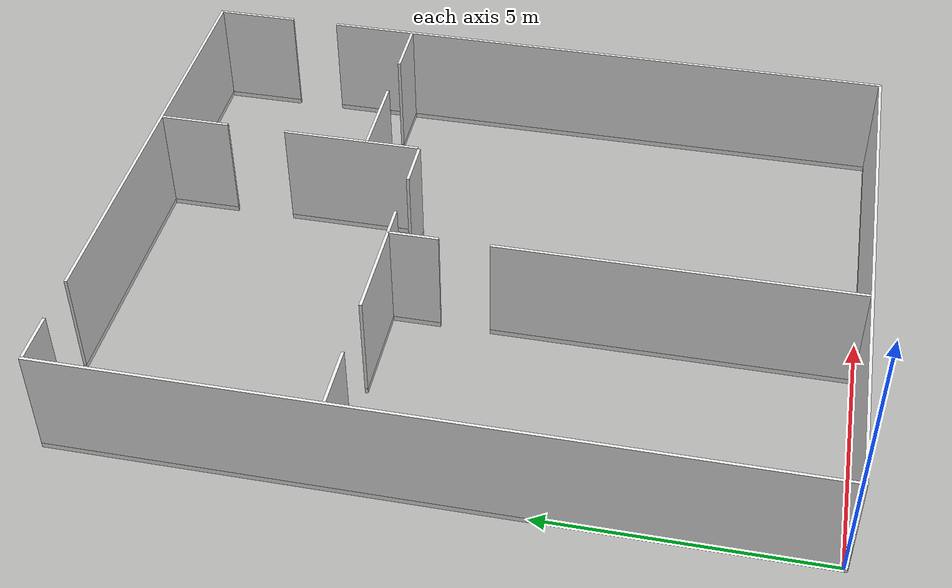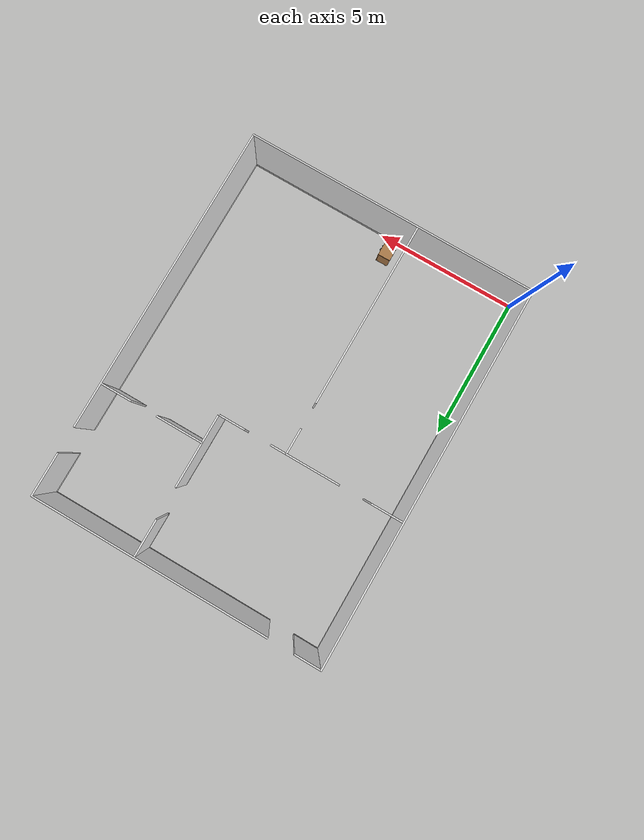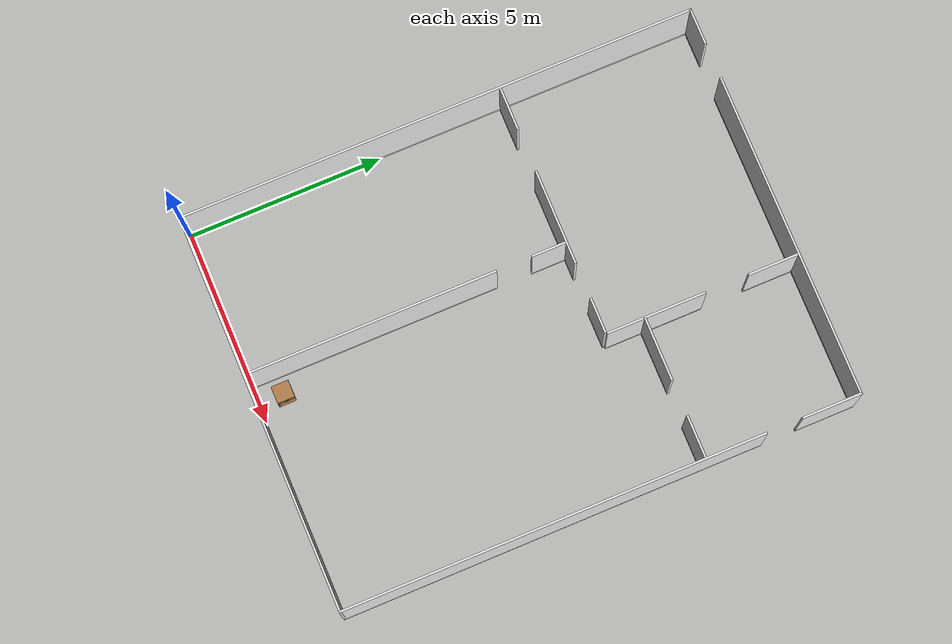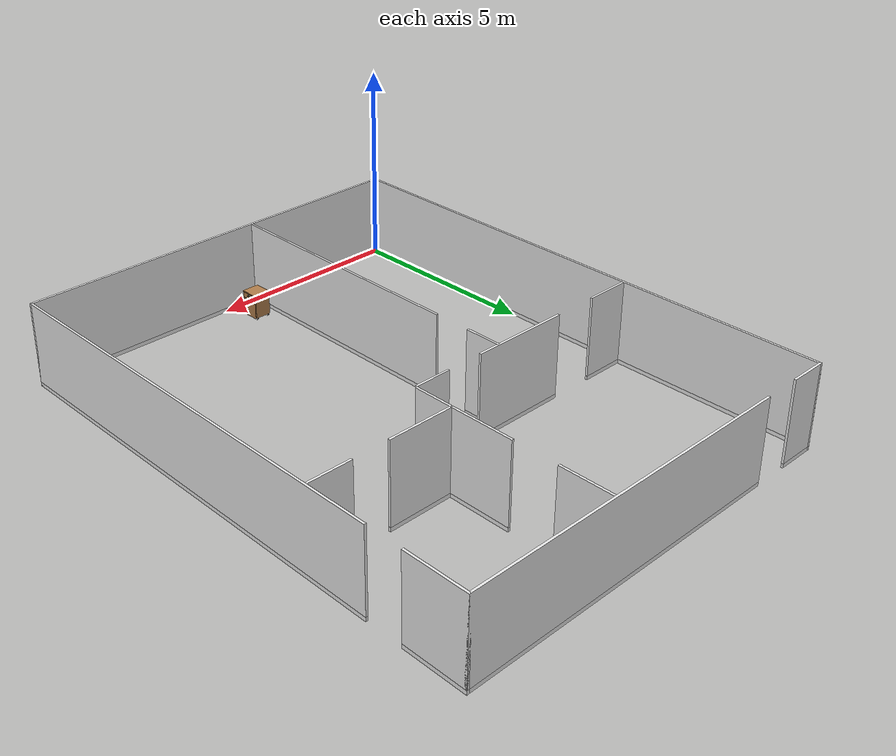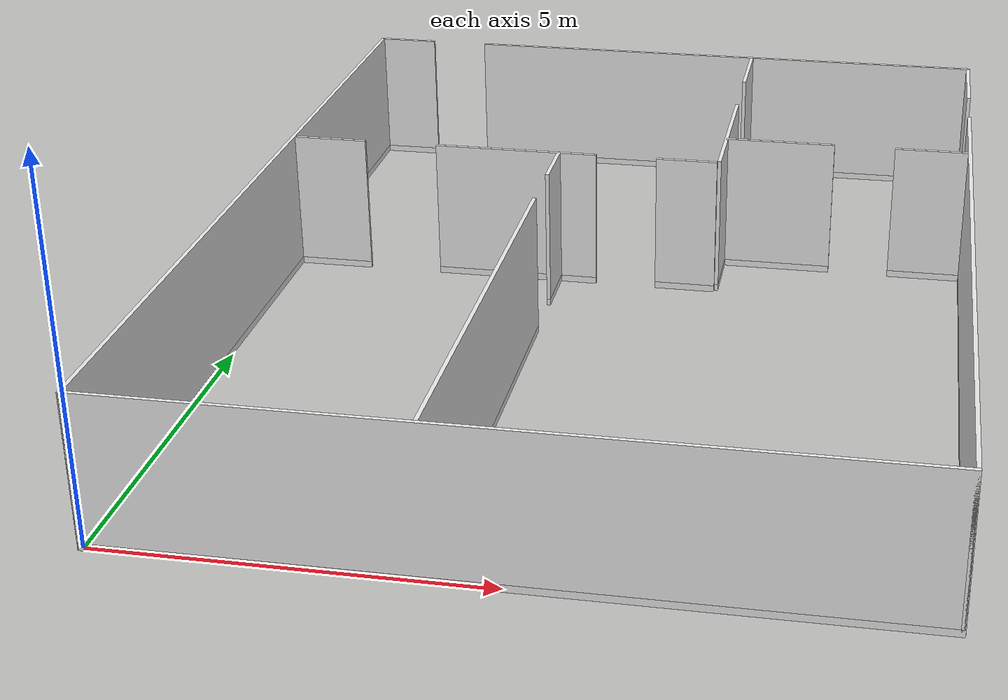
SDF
<sdf version="1.6">
 <world name="default">
  <model name="inside_wall">
   <link name="link">
    <inertial>
     <mass>50</mass>
     <inertia><ixx>1</ixx><ixy>0</ixy><ixz>0</ixz><iyy>1</iyy><iyz>0</iyz><izz>1</izz></inertia>
    </inertial>
    <visual name="x05y01_08_bottom_frame">
     <pose>4.075 3.215 0.05 0 -0 0</pose>
     <geometry><box><size>0.055 6.43 0.1</size></box></geometry>
     <material>
      <script><uri>model://base_materials/color/scripts</uri><name>hsr_color/white</name></script>
     </material>
    </visual>
    <collision name="x05y01_08_collision_bottom_frame">
     <pose>4.075 3.215 0.05 0 -0 0</pose>
     <geometry><box><size>0.055 6.43 0.1</size></box></geometry>
    </collision>
    <visual name="x05y01_08_wall">
     <pose>4.075 3.215 1.095 0 -0 0</pose>
     <geometry><box><size>0.055 6.43 1.99</size></box></geometry>
     <material>
      <script>
       <uri>model://base_materials/wall/scripts</uri>
       <uri>model://base_materials/wall/textures</uri>
       <name>wall/white_noise</name>
      </script>
     </material>
    </visual>
    <collision name="x05y01_08_collision_wall">
     <pose>4.075 3.215 1.095 0 -0 0</pose>
     <geometry><box><size>0.055 6.43 1.99</size></box></geometry>
    </collision>
    <visual name="x05y10_bottom_frame">
     <pose>4.075 7.78 0.05 0 -0 0</pose>
     <geometry><box><size>0.055 0.9 0.1</size></box></geometry>
     <material>
      <script><uri>model://base_materials/color/scripts</uri><name>hsr_color/white</name></script>
     </material>
    </visual>
    <collision name="x05y10_collision_bottom_frame">
     <pose>4.075 7.78 0.05 0 -0 0</pose>
     <geometry><box><size>0.055 0.9 0.1</size></box></geometry>
    </collision>
    <visual name="x05y10_wall">
     <pose>4.075 7.78 1.095 0 -0 0</pose>
     <geometry><box><size>0.055 0.9 1.99</size></box></geometry>
     <material>
      <script>
       <uri>model://base_materials/wall/scripts</uri>
       <uri>model://base_materials/wall/textures</uri>
       <name>wall/white_noise</name>
      </script>
     </material>
    </visual>
    <collision name="x05y10_collision_wall">
     <pose>4.075 7.78 1.095 0 -0 0</pose>
     <geometry><box><size>0.055 0.9 1.99</size></box></geometry>
    </collision>
    <visual name="x01_02_y09_bottom_frame">
     <pose>0.55 8.23 0.05 0 -0 1.5708</pose>
     <geometry><box><size>0.055 1.1 0.1</size></box></geometry>
     <material>
      <script><uri>model://base_materials/color/scripts</uri><name>hsr_color/white</name></script>
     </material>
    </visual>
    <collision name="x01_02_y09_collision_bottom_frame">
     <pose>0.55 8.23 0.05 0 -0 1.5708</pose>
     <geometry><box><size>0.055 1.1 0.1</size></box></geometry>
    </collision>
    <visual name="x01_02_y09_wall">
     <pose>0.55 8.23 1.095 0 -0 1.5708</pose>
     <geometry><box><size>0.055 1.1 1.99</size></box></geometry>
     <material>
      <script>
       <uri>model://base_materials/wall/scripts</uri>
       <uri>model://base_materials/wall/textures</uri>
       <name>wall/white_noise</name>
      </script>
     </material>
    </visual>
    <collision name="x01_02_y09_collision_wall">
     <pose>0.55 8.23 1.095 0 -0 1.5708</pose>
     <geometry><box><size>0.055 1.1 1.99</size></box></geometry>
    </collision>
    <visual name="x04_07_y09_bottom_frame">
     <pose>3.42 8.23 0.05 0 -0 1.5708</pose>
     <geometry><box><size>0.055 2.44 0.1</size></box></geometry>
     <material>
      <script><uri>model://base_materials/color/scripts</uri><name>hsr_color/white</name></script>
     </material>
    </visual>
    <collision name="x04_07_y09_collision_bottom_frame">
     <pose>3.42 8.23 0.05 0 -0 1.5708</pose>
     <geometry><box><size>0.055 2.44 0.1</size></box></geometry>
    </collision>
    <visual name="x04_07_y09_wall">
     <pose>3.42 8.23 1.095 0 -0 1.5708</pose>
     <geometry><box><size>0.055 2.44 1.99</size></box></geometry>
     <material>
      <script>
       <uri>model://base_materials/wall/scripts</uri>
       <uri>model://base_materials/wall/textures</uri>
       <name>wall/white_noise</name>
      </script>
     </material>
    </visual>
    <collision name="x04_07_y09_collision_wall">
     <pose>3.42 8.23 1.095 0 -0 1.5708</pose>
     <geometry><box><size>0.055 2.44 1.99</size></box></geometry>
    </collision>
    <visual name="x08y10a_bottom_frame">
     <pose>5.9925 8.23 0.05 0 -0 1.5708</pose>
     <geometry><box><size>0.055 0.9 0.1</size></box></geometry>
     <material>
      <script><uri>model://base_materials/color/scripts</uri><name>hsr_color/white</name></script>
     </material>
    </visual>
    <collision name="x08y10a_collision_bottom_frame">
     <pose>5.9925 8.23 0.05 0 -0 1.5708</pose>
     <geometry><box><size>0.055 0.9 0.1</size></box></geometry>
    </collision>
    <visual name="x08y10a_wall">
     <pose>5.9925 8.23 1.095 0 -0 1.5708</pose>
     <geometry><box><size>0.055 0.9 1.99</size></box></geometry>
     <material>
      <script>
       <uri>model://base_materials/wall/scripts</uri>
       <uri>model://base_materials/wall/textures</uri>
       <name>wall/white_noise</name>
      </script>
     </material>
    </visual>
    <collision name="x08y10a_collision_wall">
     <pose>5.9925 8.23 1.095 0 -0 1.5708</pose>
     <geometry><box><size>0.055 0.9 1.99</size></box></geometry>
    </collision>
    <visual name="x08y10a_bottom_frame">
     <pose>5.9925 8.23 0.05 0 -0 1.5708</pose>
     <geometry><box><size>0.055 0.9 0.1</size></box></geometry>
     <material>
      <script><uri>model://base_materials/color/scripts</uri><name>hsr_color/white</name></script>
     </material>
    </visual>
    <collision name="x08y10a_collision_bottom_frame">
     <pose>5.9925 8.23 0.05 0 -0 1.5708</pose>
     <geometry><box><size>0.055 0.9 0.1</size></box></geometry>
    </collision>
    <visual name="x08y10a_wall">
     <pose>5.9925 8.23 1.095 0 -0 1.5708</pose>
     <geometry><box><size>0.055 0.9 1.99</size></box></geometry>
     <material>
      <script>
       <uri>model://base_materials/wall/scripts</uri>
       <uri>model://base_materials/wall/textures</uri>
       <name>wall/white_noise</name>
      </script>
     </material>
    </visual>
    <collision name="x08y10a_collision_wall">
     <pose>5.9925 8.23 1.095 0 -0 1.5708</pose>
     <geometry><box><size>0.055 0.9 1.99</size></box></geometry>
    </collision>
    <visual name="x08y14_15_bottom_frame">
     <pose>6.47 12.54 0.05 0 -0 0</pose>
     <geometry><box><size>0.055 1.28 0.1</size></box></geometry>
     <material>
      <script><uri>model://base_materials/color/scripts</uri><name>hsr_color/white</name></script>
     </material>
    </visual>
    <collision name="x08y14_15_collision_bottom_frame">
     <pose>6.47 12.54 0.05 0 -0 0</pose>
     <geometry><box><size>0.055 1.28 0.1</size></box></geometry>
    </collision>
    <visual name="x08y14_15_wall">
     <pose>6.47 12.54 1.095 0 -0 0</pose>
     <geometry><box><size>0.055 1.28 1.99</size></box></geometry>
     <material>
      <script>
       <uri>model://base_materials/wall/scripts</uri>
       <uri>model://base_materials/wall/textures</uri>
       <name>wall/white_noise</name>
      </script>
     </material>
    </visual>
    <collision name="x08y14_15_collision_wall">
     <pose>6.47 12.54 1.095 0 -0 0</pose>
     <geometry><box><size>0.055 1.28 1.99</size></box></geometry>
    </collision>
    <visual name="x08y10b_12_bottom_frame">
     <pose>6.47 9.52875 0.05 0 -0 0</pose>
     <geometry><box><size>0.055 2.5425 0.1</size></box></geometry>
     <material>
      <script><uri>model://base_materials/color/scripts</uri><name>hsr_color/white</name></script>
     </material>
    </visual>
    <collision name="x08y10b_12_collision_bottom_frame">
     <pose>6.47 9.52875 0.05 0 -0 0</pose>
     <geometry><box><size>0.055 2.5425 0.1</size></box></geometry>
    </collision>
    <visual name="x08y10b_12_wall">
     <pose>6.47 9.52875 1.095 0 -0 0</pose>
     <geometry><box><size>0.055 2.5425 1.99</size></box></geometry>
     <material>
      <script>
       <uri>model://base_materials/wall/scripts</uri>
       <uri>model://base_materials/wall/textures</uri>
       <name>wall/white_noise</name>
      </script>
     </material>
    </visual>
    <collision name="x08y10b_12_collision_wall">
     <pose>6.47 9.52875 1.095 0 -0 0</pose>
     <geometry><box><size>0.055 2.5425 1.99</size></box></geometry>
    </collision>
    <visual name="x08_09y11b_bottom_frame">
     <pose>7.284 9.23 0.05 0 -0 1.5708</pose>
     <geometry><box><size>0.055 1.632 0.1</size></box></geometry>
     <material>
      <script><uri>model://base_materials/color/scripts</uri><name>hsr_color/white</name></script>
     </material>
    </visual>
    <collision name="x08_09y11b_collision_bottom_frame">
     <pose>7.284 9.23 0.05 0 -0 1.5708</pose>
     <geometry><box><size>0.055 1.632 0.1</size></box></geometry>
    </collision>
    <visual name="x08_09y11b_wall">
     <pose>7.284 9.23 1.095 0 -0 1.5708</pose>
     <geometry><box><size>0.055 1.632 1.99</size></box></geometry>
     <material>
      <script>
       <uri>model://base_materials/wall/scripts</uri>
       <uri>model://base_materials/wall/textures</uri>
       <name>wall/white_noise</name>
      </script>
     </material>
    </visual>
    <collision name="x08_09y11b_collision_wall">
     <pose>7.284 9.23 1.095 0 -0 1.5708</pose>
     <geometry><box><size>0.055 1.632 1.99</size></box></geometry>
    </collision>
    <visual name="x11_12y11_bottom_frame">
     <pose>9.5375 9.23 0.05 0 -0 1.5708</pose>
     <geometry><box><size>0.055 1.075 0.1</size></box></geometry>
     <material>
      <script><uri>model://base_materials/color/scripts</uri><name>hsr_color/white</name></script>
     </material>
    </visual>
    <collision name="x11_12y11_collision_bottom_frame">
     <pose>9.5375 9.23 0.05 0 -0 1.5708</pose>
     <geometry><box><size>0.055 1.075 0.1</size></box></geometry>
    </collision>
    <visual name="x11_12y11_wall">
     <pose>9.5375 9.23 1.095 0 -0 1.5708</pose>
     <geometry><box><size>0.055 1.075 1.99</size></box></geometry>
     <material>
      <script>
       <uri>model://base_materials/wall/scripts</uri>
       <uri>model://base_materials/wall/textures</uri>
       <name>wall/white_noise</name>
      </script>
     </material>
    </visual>
    <collision name="x11_12y11_collision_wall">
     <pose>9.5375 9.23 1.095 0 -0 1.5708</pose>
     <geometry><box><size>0.055 1.075 1.99</size></box></geometry>
    </collision>
    <velocity_decay><linear>0</linear><angular>0</angular></velocity_decay>
   </link>
   <static>1</static>
  </model>
  <model name="outside_wall">
   <link name="link">
    <inertial>
     <mass>50</mass>
     <inertia><ixx>1</ixx><ixy>0</ixy><ixz>0</ixz><iyy>1</iyy><iyz>0</iyz><izz>1</izz></inertia>
    </inertial>
    <visual name="x00_13y00_bottom_frame">
     <pose>5.0375 -0.0275 0.05 0 -0 0</pose>
     <geometry><box><size>10.185 0.055 0.1</size></box></geometry>
     <material>
      <script><uri>model://base_materials/color/scripts</uri><name>hsr_color/white</name></script>
     </material>
    </visual>
    <collision name="x00_13y00_collision_bottom_frame">
     <pose>5.0375 -0.0275 0.05 0 -0 0</pose>
     <geometry><box><size>10.185 0.055 0.1</size></box></geometry>
    </collision>
    <visual name="wall_x00_13y00">
     <pose>5.0375 -0.0275 1.095 0 -0 0</pose>
     <geometry><box><size>10.185 0.055 1.99</size></box></geometry>
     <material>
      <script>
       <uri>model://base_materials/wall/scripts</uri>
       <uri>model://base_materials/wall/textures</uri>
       <name>wall/white_noise</name>
      </script>
     </material>
    </visual>
    <collision name="wall_x00_13y00">
     <pose>5.0375 -0.002 1.095 0 -0 0</pose>
     <geometry><box><size>10.08 0.055 1.99</size></box></geometry>
    </collision>
    <visual name="x00y00_15_bottom_frame">
     <pose>-0.0275 6.59 0.05 0 -0 0</pose>
     <geometry><box><size>0.055 13.29 0.1</size></box></geometry>
     <material>
      <script><uri>model://base_materials/color/scripts</uri><name>hsr_color/white</name></script>
     </material>
    </visual>
    <collision name="x00y00_15_collision_bottom_frame">
     <pose>-0.0275 6.59 0.05 0 -0 0</pose>
     <geometry><box><size>0.055 13.29 0.1</size></box></geometry>
    </collision>
    <visual name="wall_x00y00_15">
     <pose>-0.0275 6.59 1.095 0 -0 0</pose>
     <geometry><box><size>0.055 13.29 1.99</size></box></geometry>
     <material>
      <script>
       <uri>model://base_materials/wall/scripts</uri>
       <uri>model://base_materials/wall/textures</uri>
       <name>wall/white_noise</name>
      </script>
     </material>
    </visual>
    <collision name="wall_x00y00_x00y15">
     <pose>-0.002 6.59 1.095 0 -0 0</pose>
     <geometry><box><size>0.002 13.29 1.99</size></box></geometry>
    </collision>
    <visual name="x13y00_12_bottom_frame">
     <pose>10.1025 5.3725 0.05 0 -0 0</pose>
     <geometry><box><size>0.055 10.855 0.1</size></box></geometry>
     <material>
      <script><uri>model://base_materials/color/scripts</uri><name>hsr_color/white</name></script>
     </material>
    </visual>
    <collision name="x13y00_12_collision_bottom_frame">
     <pose>10.1025 5.3725 0.05 0 -0 0</pose>
     <geometry><box><size>0.055 10.855 0.1</size></box></geometry>
    </collision>
    <visual name="wall_x13y00_12">
     <pose>10.1025 5.3725 1.095 0 -0 0</pose>
     <geometry><box><size>0.055 10.855 1.99</size></box></geometry>
     <material>
      <script>
       <uri>model://base_materials/wall/scripts</uri>
       <uri>model://base_materials/wall/textures</uri>
       <name>wall/white_noise</name>
      </script>
     </material>
    </visual>
    <collision name="wall_x13y00_12">
     <pose>10.1025 5.3725 1.095 0 -0 0</pose>
     <geometry><box><size>0.055 10.855 1.99</size></box></geometry>
    </collision>
    <visual name="x13y14_16_bottom_frame">
     <pose>10.1025 12.4675 0.05 0 -0 0</pose>
     <geometry><box><size>0.055 1.535 0.1</size></box></geometry>
     <material>
      <script><uri>model://base_materials/color/scripts</uri><name>hsr_color/white</name></script>
     </material>
    </visual>
    <collision name="x13y14_16_collision_bottom_frame">
     <pose>10.1025 12.4675 0.05 0 -0 0</pose>
     <geometry><box><size>0.055 1.535 0.1</size></box></geometry>
    </collision>
    <visual name="wall_x13y14_x13y16">
     <pose>10.1025 12.4675 1.095 0 -0 0</pose>
     <geometry><box><size>0.055 1.535 1.99</size></box></geometry>
     <material>
      <script>
       <uri>model://base_materials/wall/scripts</uri>
       <uri>model://base_materials/wall/textures</uri>
       <name>wall/white_noise</name>
      </script>
     </material>
    </visual>
    <collision name="wall_x13y14_x13y16">
     <pose>10.1025 12.4675 1.095 0 -0 0</pose>
     <geometry><box><size>0.055 1.535 1.99</size></box></geometry>
    </collision>
    <visual name="x00_01y16_bottom_frame">
     <pose>0.4225 13.2075 0.05 0 -0 0</pose>
     <geometry><box><size>0.955 0.055 0.1</size></box></geometry>
     <material>
      <script><uri>model://base_materials/color/scripts</uri><name>hsr_color/white</name></script>
     </material>
    </visual>
    <collision name="x00_01y16_collision_bottom_frame">
     <pose>0.4225 13.2075 0.05 0 -0 0</pose>
     <geometry><box><size>0.955 0.055 0.1</size></box></geometry>
    </collision>
    <visual name="wall_x00_01y16">
     <pose>0.4225 13.2075 1.095 0 -0 0</pose>
     <geometry><box><size>0.955 0.055 1.99</size></box></geometry>
     <material>
      <script>
       <uri>model://base_materials/wall/scripts</uri>
       <uri>model://base_materials/wall/textures</uri>
       <name>wall/white_noise</name>
      </script>
     </material>
    </visual>
    <collision name="wall_x00_x01y16">
     <pose>0.4225 13.2075 1.095 0 -0 0</pose>
     <geometry><box><size>0.955 0.055 1.99</size></box></geometry>
    </collision>
    <visual name="x03_13y16_bottom_frame">
     <pose>5.965 13.2075 0.05 0 -0 0</pose>
     <geometry><box><size>8.33 0.05 0.1</size></box></geometry>
     <material>
      <script><uri>model://base_materials/color/scripts</uri><name>hsr_color/white</name></script>
     </material>
    </visual>
    <collision name="x03_13y16_collision_bottom_frame">
     <pose>5.965 13.2075 0.05 0 -0 0</pose>
     <geometry><box><size>8.33 0.05 0.1</size></box></geometry>
    </collision>
    <visual name="wall_x03_13y16">
     <pose>5.965 13.2075 1.095 0 -0 0</pose>
     <geometry><box><size>8.33 0.055 1.99</size></box></geometry>
     <material>
      <script>
       <uri>model://base_materials/wall/scripts</uri>
       <uri>model://base_materials/wall/textures</uri>
       <name>wall/white_noise</name>
      </script>
     </material>
    </visual>
    <collision name="wall_x03_13y16">
     <pose>5.965 13.2075 1.095 0 -0 0</pose>
     <geometry><box><size>8.33 0.055 1.99</size></box></geometry>
    </collision>
    <velocity_decay><linear>0</linear><angular>0</angular></velocity_decay>
   </link>
   <static>1</static>
  </model>
  <model name="wagon">
   <link name="link">
    <inertial>
     <mass>10</mass>
     <inertia><ixx>1</ixx><ixy>0</ixy><ixz>0</ixz><iyy>1</iyy><iyz>0</iyz><izz>1</izz></inertia>
    </inertial>
    <visual name="left_board">
     <pose>-0.2325 0.01 0.345 0 -0 0</pose>
     <geometry><box><size>0.415 0.02 0.59</size></box></geometry>
     <material>
      <script><uri>model://base_materials/wood/scripts/wood.material</uri><name>base_materials/wood</name></script>
     </material>
    </visual>
    <collision name="collision_left_board">
     <pose>-0.2325 0.01 0.345 0 -0 0</pose>
     <geometry><box><size>0.415 0.02 0.59</size></box></geometry>
    </collision>
    <visual name="right_board">
     <pose>-0.2325 0.4325 0.345 0 -0 0</pose>
     <geometry><box><size>0.415 0.02 0.59</size></box></geometry>
     <material>
      <script><uri>model://base_materials/wood/scripts/wood.material</uri><name>base_materials/wood</name></script>
     </material>
    </visual>
    <collision name="collision_right_board">
     <pose>-0.2325 0.4325 0.345 0 -0 0</pose>
     <geometry><box><size>0.415 0.02 0.59</size></box></geometry>
    </collision>
    <visual name="top_board">
     <pose>-0.22 0.2225 0.655 0 -0 0</pose>
     <geometry><box><size>0.44 0.445 0.03</size></box></geometry>
     <material>
      <script><uri>model://base_materials/wood/scripts/wood.material</uri><name>base_materials/wood</name></script>
     </material>
    </visual>
    <collision name="collision_top_board">
     <pose>-0.22 0.2225 0.655 0 -0 0</pose>
     <geometry><box><size>0.44 0.445 0.03</size></box></geometry>
    </collision>
    <visual name="back_board">
     <pose>-0.425 0.2225 0.345 0 -0 0</pose>
     <geometry><box><size>0.02 0.405 0.59</size></box></geometry>
     <material>
      <script><uri>model://base_materials/wood/scripts/wood.material</uri><name>base_materials/wood</name></script>
     </material>
    </visual>
    <collision name="collision_back_board">
     <pose>-0.425 0.2225 0.345 0 -0 0</pose>
     <geometry><box><size>0.02 0.405 0.59</size></box></geometry>
    </collision>
    <visual name="bottom_board">
     <pose>-0.2325 0.2225 0.06 0 -0 0</pose>
     <geometry><box><size>0.415 0.405 0.02</size></box></geometry>
     <material>
      <script><uri>model://base_materials/wood/scripts/wood.material</uri><name>base_materials/wood</name></script>
     </material>
    </visual>
    <collision name="collision_bottom_board">
     <pose>-0.2325 0.2225 0.06 0 -0 0</pose>
     <geometry><box><size>0.415 0.405 0.02</size></box></geometry>
    </collision>
    <visual name="1st_drawer">
     <pose>-0.0125 0.2225 0.57 0 -0 0</pose>
     <geometry><box><size>0.025 0.445 0.14</size></box></geometry>
     <material>
      <script><uri>model://base_materials/wood/scripts/wood.material</uri><name>base_materials/wood</name></script>
     </material>
    </visual>
    <collision name="collision_1st_drawer">
     <pose>-0.0125 0.2225 0.57 0 -0 0</pose>
     <geometry><box><size>0.025 0.445 0.14</size></box></geometry>
    </collision>
    <visual name="1st_drawer_handle_l1">
     <pose>0.0115 0.1895 0.6 3.14159 1.57079 3.14159</pose>
     <geometry><cylinder><radius>0.007</radius><length>0.023</length></cylinder></geometry>
     <material>
      <ambient>0.18431 0.3098 0.3098 1</ambient>
      <diffuse>0.18431 0.3098 0.3098 1</diffuse>
      <specular>0.1 0.1 0.1 1</specular>
     </material>
    </visual>
    <collision name="collision_1st_drawer_handle_l1">
     <pose>0.0115 0.1895 0.6 3.14159 1.57079 3.14159</pose>
     <geometry><cylinder><radius>0.007</radius><length>0.023</length></cylinder></geometry>
    </collision>
    <visual name="1st_drawer_handle_l2">
     <pose>0.023 0.1895 0.6 0 -0 0</pose>
     <geometry><sphere><radius>0.007</radius></sphere></geometry>
     <material>
      <ambient>0.18431 0.3098 0.3098 1</ambient>
      <diffuse>0.18431 0.3098 0.3098 1</diffuse>
      <specular>0.1 0.1 0.1 1</specular>
     </material>
    </visual>
    <collision name="collision_1st_drawer_handle_l2">
     <pose>0.023 0.1895 0.6 0 -0 0</pose>
     <geometry><sphere><radius>0.007</radius></sphere></geometry>
    </collision>
    <visual name="1st_drawer_handle_r1">
     <pose>0.0115 0.2555 0.6 3.14159 1.57079 3.14159</pose>
     <geometry><cylinder><radius>0.007</radius><length>0.023</length></cylinder></geometry>
     <material>
      <ambient>0.18431 0.3098 0.3098 1</ambient>
      <diffuse>0.18431 0.3098 0.3098 1</diffuse>
      <specular>0.1 0.1 0.1 1</specular>
     </material>
    </visual>
    <collision name="collision_1st_drawer_handle_r1">
     <pose>0.0115 0.2555 0.6 3.14159 1.57079 3.14159</pose>
     <geometry><cylinder><radius>0.007</radius><length>0.023</length></cylinder></geometry>
    </collision>
    <visual name="1st_drawer_handle_r2">
     <pose>0.023 0.2555 0.6 0 -0 0</pose>
     <geometry><sphere><radius>0.007</radius></sphere></geometry>
     <material>
      <ambient>0.18431 0.3098 0.3098 1</ambient>
      <diffuse>0.18431 0.3098 0.3098 1</diffuse>
      <specular>0.1 0.1 0.1 1</specular>
     </material>
    </visual>
    <collision name="collision_1st_drawer_handle_r2">
     <pose>0.023 0.2555 0.6 0 -0 0</pose>
     <geometry><sphere><radius>0.007</radius></sphere></geometry>
    </collision>
    <visual name="1st_drawer_handle_center">
     <pose>0.023 0.2225 0.6 1.5708 -0 0</pose>
     <geometry><cylinder><radius>0.007</radius><length>0.066</length></cylinder></geometry>
     <material>
      <ambient>0.18431 0.3098 0.3098 1</ambient>
      <diffuse>0.18431 0.3098 0.3098 1</diffuse>
      <specular>0.1 0.1 0.1 1</specular>
     </material>
    </visual>
    <collision name="collision_1st_drawer_handle_center">
     <pose>0.023 0.2225 0.6 1.5708 -0 0</pose>
     <geometry><cylinder><radius>0.007</radius><length>0.066</length></cylinder></geometry>
    </collision>
    <visual name="2nd_drawer">
     <pose>-0.0125 0.2225 0.275 0 -0 0</pose>
     <geometry><box><size>0.025 0.445 0.45</size></box></geometry>
     <material>
      <script><uri>model://base_materials/wood/scripts/wood.material</uri><name>base_materials/wood</name></script>
     </material>
    </visual>
    <collision name="collision_2nd_drawer">
     <pose>-0.0125 0.2225 0.275 0 -0 0</pose>
     <geometry><box><size>0.025 0.445 0.45</size></box></geometry>
    </collision>
    <visual name="2nd_drawer_handle_top1">
     <pose>0.0115 0.04 0.47 3.14159 1.57079 3.14159</pose>
     <geometry><cylinder><radius>0.007</radius><length>0.023</length></cylinder></geometry>
     <material>
      <ambient>0.18431 0.3098 0.3098 1</ambient>
      <diffuse>0.18431 0.3098 0.3098 1</diffuse>
      <specular>0.1 0.1 0.1 1</specular>
     </material>
    </visual>
    <collision name="collision_2nd_drawer_handle_top1">
     <pose>0.0115 0.04 0.47 3.14159 1.57079 3.14159</pose>
     <geometry><cylinder><radius>0.007</radius><length>0.023</length></cylinder></geometry>
    </collision>
    <visual name="2nd_drawer_handle_top2">
     <pose>0.023 0.04 0.47 0 -0 0</pose>
     <geometry><sphere><radius>0.007</radius></sphere></geometry>
     <material>
      <ambient>0.18431 0.3098 0.3098 1</ambient>
      <diffuse>0.18431 0.3098 0.3098 1</diffuse>
      <specular>0.1 0.1 0.1 1</specular>
     </material>
    </visual>
    <collision name="2nd_drawer_handle_top2">
     <pose>0.023 0.04 0.47 0 -0 0</pose>
     <geometry><sphere><radius>0.007</radius></sphere></geometry>
    </collision>
    <visual name="2nd_drawer_handle_bottom1">
     <pose>0.0115 0.04 0.404 3.14159 1.57079 3.14159</pose>
     <geometry><cylinder><radius>0.007</radius><length>0.023</length></cylinder></geometry>
     <material>
      <ambient>0.18431 0.3098 0.3098 1</ambient>
      <diffuse>0.18431 0.3098 0.3098 1</diffuse>
      <specular>0.1 0.1 0.1 1</specular>
     </material>
    </visual>
    <collision name="collision_2nd_drawer_handle_bottom1">
     <pose>0.0115 0.04 0.404 3.14159 1.57079 3.14159</pose>
     <geometry><cylinder><radius>0.007</radius><length>0.023</length></cylinder></geometry>
    </collision>
    <visual name="2nd_drawer_handle_bottom2">
     <pose>0.023 0.04 0.404 0 -0 0</pose>
     <geometry><sphere><radius>0.007</radius></sphere></geometry>
     <material>
      <ambient>0.18431 0.3098 0.3098 1</ambient>
      <diffuse>0.18431 0.3098 0.3098 1</diffuse>
      <specular>0.1 0.1 0.1 1</specular>
     </material>
    </visual>
    <collision name="2nd_drawer_handle_bottom2">
     <pose>0.023 0.04 0.404 0 -0 0</pose>
     <geometry><sphere><radius>0.007</radius></sphere></geometry>
    </collision>
    <visual name="2nd_drawer_handle_center">
     <pose>0.023 0.04 0.437 0 -0 0</pose>
     <geometry><cylinder><radius>0.007</radius><length>0.066</length></cylinder></geometry>
     <material>
      <ambient>0.18431 0.3098 0.3098 1</ambient>
      <diffuse>0.18431 0.3098 0.3098 1</diffuse>
      <specular>0.1 0.1 0.1 1</specular>
     </material>
    </visual>
    <collision name="collision_2nd_drawer_handle_center">
     <pose>0.023 0.04 0.437 0 -0 0</pose>
     <geometry><cylinder><radius>0.007</radius><length>0.066</length></cylinder></geometry>
    </collision>
    <visual name="left_front_caster">
     <pose>-0.07 0.025 0.025 3.14159 1.57079 3.14159</pose>
     <geometry><cylinder><radius>0.025</radius><length>0.035</length></cylinder></geometry>
     <material><script><name>Gazebo/Black</name><uri>__default__</uri></script></material>
    </visual>
    <collision name="collision_left_front_caster">
     <pose>-0.07 0.025 0.025 3.14159 1.57079 3.14159</pose>
     <geometry><cylinder><radius>0.025</radius><length>0.035</length></cylinder></geometry>
    </collision>
    <visual name="right_front_caster">
     <pose>-0.07 0.42 0.025 3.14159 1.57079 3.14159</pose>
     <geometry><cylinder><radius>0.025</radius><length>0.035</length></cylinder></geometry>
     <material><script><name>Gazebo/Black</name><uri>__default__</uri></script></material>
    </visual>
    <collision name="collision_right_front_caster">
     <pose>-0.07 0.42 0.025 3.14159 1.57079 3.14159</pose>
     <geometry><cylinder><radius>0.025</radius><length>0.035</length></cylinder></geometry>
    </collision>
    <visual name="left_back_caster">
     <pose>-0.39 0.025 0.025 3.14159 1.57079 3.14159</pose>
     <geometry><cylinder><radius>0.025</radius><length>0.035</length></cylinder></geometry>
     <material><script><name>Gazebo/Black</name><uri>__default__</uri></script></material>
    </visual>
    <collision name="collision_left_back_caster">
     <pose>-0.39 0.025 0.025 3.14159 1.57079 3.14159</pose>
     <geometry><cylinder><radius>0.025</radius><length>0.035</length></cylinder></geometry>
    </collision>
    <visual name="right_back_caster">
     <pose>-0.39 0.42 0.025 3.14159 1.57079 3.14159</pose>
     <geometry><cylinder><radius>0.025</radius><length>0.035</length></cylinder></geometry>
     <material><script><name>Gazebo/Black</name><uri>__default__</uri></script></material>
    </visual>
    <collision name="collision_right_back_caster">
     <pose>-0.39 0.42 0.025 3.14159 1.57079 3.14159</pose>
     <geometry><cylinder><radius>0.025</radius><length>0.035</length></cylinder></geometry>
    </collision>
    <velocity_decay><linear>0</linear><angular>0</angular></velocity_decay>
   </link>
   <static>1</static>
   <pose>4.77681 0.429248 0 0 -0 0</pose>
  </model>
 </world>
</sdf>
